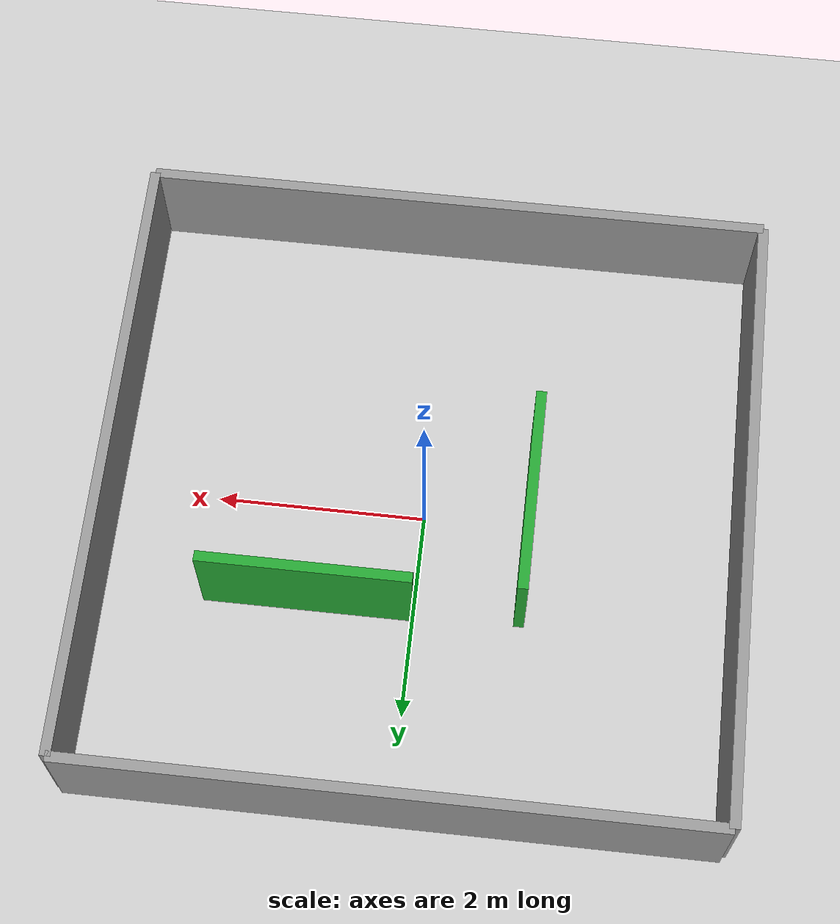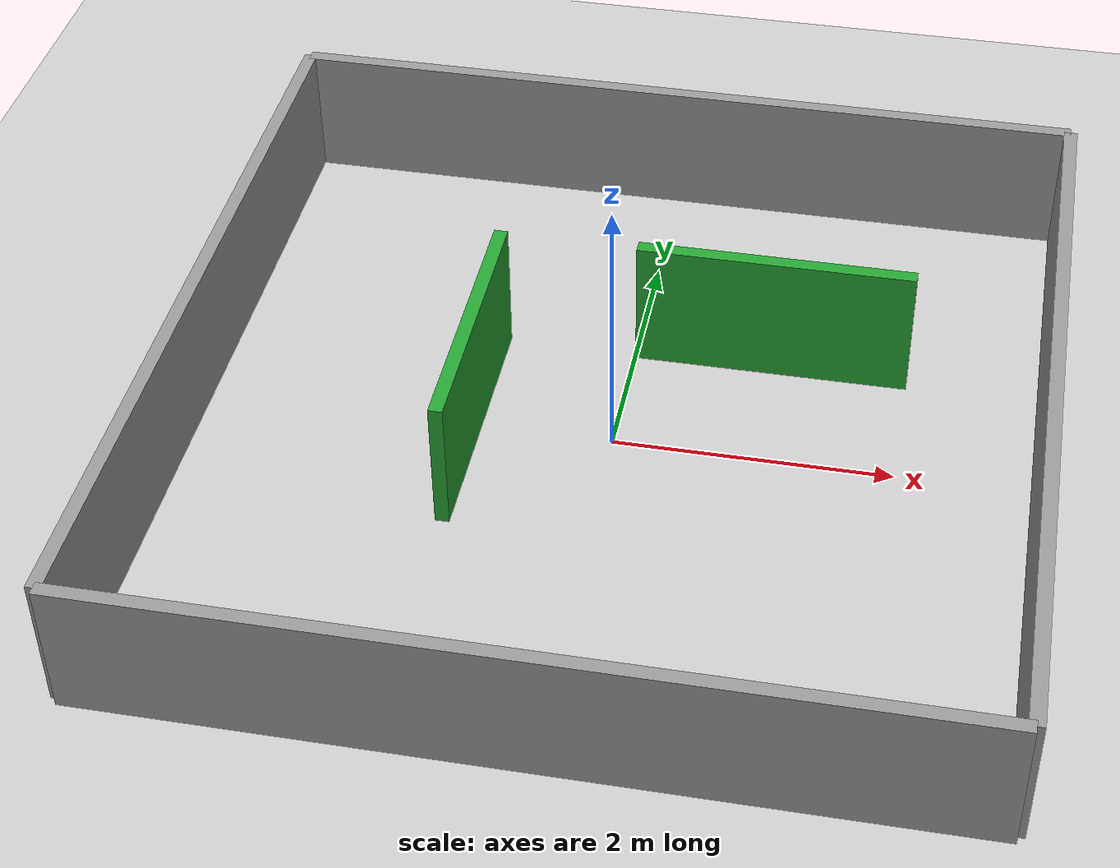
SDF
<?xml version="1.0" ?>
<sdf version="1.6">
  <world name="open_top_room">
    <!-- Basic world setup -->
    <gravity>0 0 -9.81</gravity>
    <include>
      <uri>model://ground_plane</uri>
    </include>
    <include>
      <uri>model://sun</uri>
    </include>

    <!-- Define the room as individual walls with an open top -->
    <model name="room">
      <static>true</static>

      <link name="wall_1">
        <collision name="collision">
          <geometry>
            <box>
              <size>0.1 6 1</size>
            </box>
          </geometry>
          <pose>-3 0 0.5 0 0 0</pose>
        </collision>
        <visual name="visual">
          <geometry>
            <box>
              <size>0.1 6 1</size>
            </box>
          </geometry>
          <material>
            <script>
              <uri>file://media/materials/scripts/gazebo.material</uri>
              <name>Gazebo/Grey</name>
            </script>
          </material>
          <pose>-3 0 0.5 0 0 0</pose>
        </visual>
      </link>
      <link name="wall_2">
        <collision name="collision">
          <geometry>
            <box>
              <size>0.1 6 1</size>
            </box>
          </geometry>
          <pose>3 0 0.5 0 0 0</pose>
        </collision>
        <visual name="visual">
          <geometry>
            <box>
              <size>0.1 6 1</size>
            </box>
          </geometry>
          <material>
            <script>
              <uri>file://media/materials/scripts/gazebo.material</uri>
              <name>Gazebo/Grey</name>
            </script>
          </material>
          <pose>3 0 0.5 0 0 0</pose>
        </visual>
      </link>
            <link name="wall_3">
        <collision name="collision">
          <geometry>
            <box>
              <size>6 0.1 1</size>
            </box>
          </geometry>
          <pose>0 -3 0.5 0 0 0</pose>
        </collision>
        <visual name="visual">
          <geometry>
            <box>
              <size>6 0.1 1</size>
            </box>
          </geometry>
          <material>
            <script>
              <uri>file://media/materials/scripts/gazebo.material</uri>
              <name>Gazebo/Grey</name>
            </script>
          </material>
          <pose>0 -3 0.5 0 0 0</pose>
        </visual>
      </link>
            <link name="wall_4">
        <collision name="collision">
          <geometry>
            <box>
              <size>6 0.1 1</size>
            </box>
          </geometry>
          <pose>0 3 0.5 0 0 0</pose>
        </collision>
        <visual name="visual">
          <geometry>
            <box>
              <size>6 0.1 1</size>
            </box>
          </geometry>
          <material>
            <script>
              <uri>file://media/materials/scripts/gazebo.material</uri>
              <name>Gazebo/Grey</name>
            </script>
          </material>
          <pose>0 3 0.5 0 0 0</pose>
        </visual>
      </link>

      <link name="inner_wall_1">
        <collision name="collision">
          <geometry>
            <box>
              <size>0.1 2 1</size>
            </box>
          </geometry>
          <pose>-1 0 0.5 0 0 0</pose>
        </collision>
        <visual name="visual">
          <geometry>
            <box>
              <size>0.1 2 1</size>
            </box>
          </geometry>
          <material>
            <script>
              <uri>file://media/materials/scripts/gazebo.material</uri>
              <name>Gazebo/Green</name>
            </script>
          </material>
          <pose>-1 0 0.5 0 0 0</pose>
        </visual>
      </link>
      <link name="inner_wall_2">
        <collision name="collision">
          <geometry>
            <box>
              <size>2 0.1 1</size>
            </box>
          </geometry>
          <pose>1 1 0.5 0 0 0</pose>
        </collision>
        <visual name="visual">
          <geometry>
            <box>
              <size>2 0.1 1</size>
            </box>
          </geometry>
          <material>
            <script>
              <uri>file://media/materials/scripts/gazebo.material</uri>
              <name>Gazebo/Green</name>
            </script>
          </material>
          <pose>1 1 0.5 0 0 0</pose>
        </visual>
      </link>

    </model>
  </world>
</sdf>
